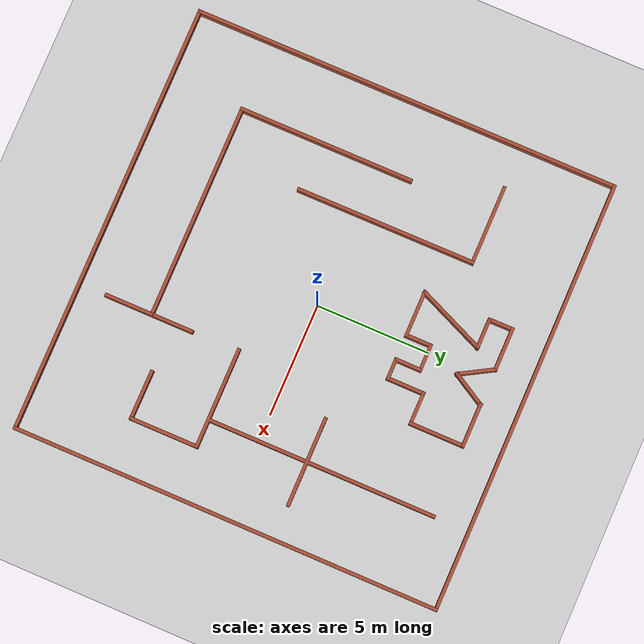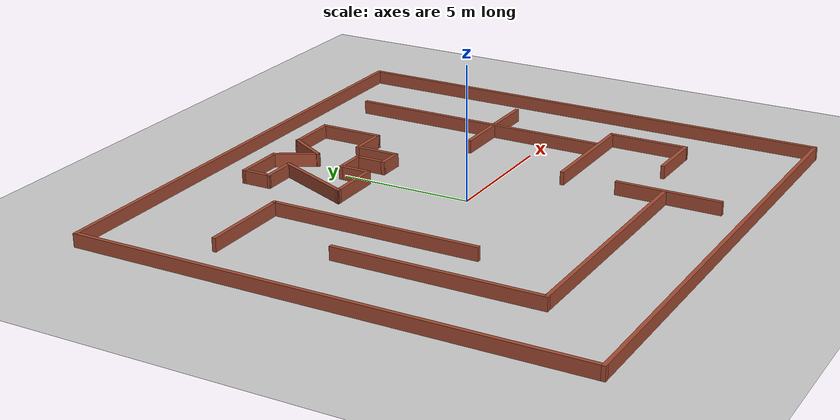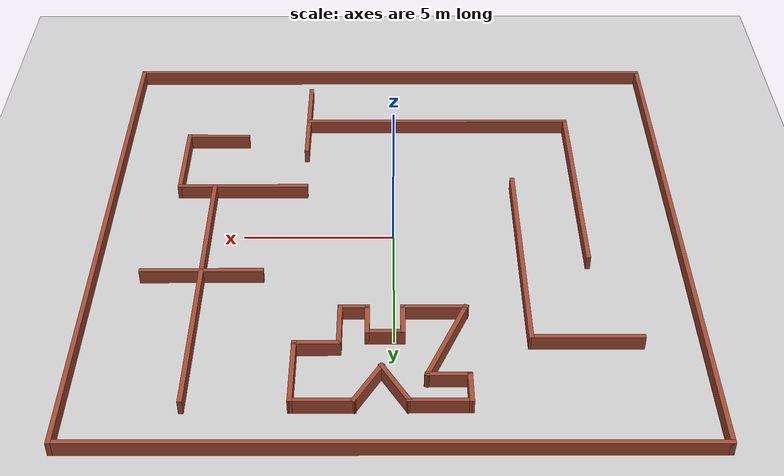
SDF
<sdf version="1.6">
 <world name="default">
  <light name="sun" type="directional">
   <pose>0 0 10 0 -0 0</pose>
   <diffuse>0.8 0.8 0.8 1</diffuse>
   <specular>0.2 0.2 0.2 1</specular>
   <attenuation>
    <range>1000</range>
    <constant>0.9</constant>
    <linear>0.01</linear>
    <quadratic>0.001</quadratic>
   </attenuation>
   <direction>-0.5 0.1 -0.9</direction>
  </light>
  <model name="ground_plane">
   <static>1</static>
   <link name="link">
    <collision name="collision">
     <geometry><plane><normal>0 0 1</normal><size>100 100</size></plane></geometry>
     <surface>
      <contact><collide_bitmask>65535</collide_bitmask></contact>
      <friction><ode><mu>100</mu><mu2>50</mu2></ode></friction>
     </surface>
    </collision>
    <visual name="visual">
     <cast_shadows>0</cast_shadows>
     <geometry><plane><normal>0 0 1</normal><size>100 100</size></plane></geometry>
     <material>
      <script><uri>file://media/materials/scripts/gazebo.material</uri><name>Gazebo/Grey</name></script>
     </material>
    </visual>
   </link>
  </model>
  <gravity>0 0 -9.8</gravity>
  <magnetic_field>6e-06 2.3e-05 -4.2e-05</magnetic_field>
  <atmosphere type="adiabatic"/>
  <physics name="default_physics" default="0" type="ode">
   <max_step_size>0.001</max_step_size>
   <real_time_factor>1</real_time_factor>
   <real_time_update_rate>1000</real_time_update_rate>
  </physics>
  <scene><ambient>0.4 0.4 0.4 1</ambient><background>0.7 0.7 0.7 1</background><shadows>1</shadows></scene>
  <audio><device>default</device></audio>
  <spherical_coordinates>
   <surface_model>EARTH_WGS84</surface_model>
   <latitude_deg>0</latitude_deg>
   <longitude_deg>0</longitude_deg>
   <elevation>0</elevation>
   <heading_deg>0</heading_deg>
  </spherical_coordinates>
  <model name="zmp_wall">
   <pose>0.101 -0.014 0 0 -0 0</pose>
   <link name="Wall_10">
    <collision name="Wall_10_Collision">
     <geometry><box><size>19.25 0.15 0.5</size></box></geometry>
     <pose>0 0 0.25 0 -0 0</pose>
    </collision>
    <visual name="Wall_10_Visual">
     <pose>0 0 0.25 0 -0 0</pose>
     <geometry><box><size>19.25 0.15 0.5</size></box></geometry>
     <material>
      <script><uri>file://media/materials/scripts/gazebo.material</uri><name>Gazebo/Bricks</name></script>
      <ambient>0.996078 0.47451 0.0196078 1</ambient>
     </material>
     <meta><layer>0</layer></meta>
    </visual>
    <pose>0 -9.445 0 0 -0 3.14159</pose>
   </link>
   <link name="Wall_13">
    <collision name="Wall_13_Collision">
     <geometry><box><size>19.0403 0.15 0.5</size></box></geometry>
     <pose>0 0 0.25 0 -0 0</pose>
    </collision>
    <visual name="Wall_13_Visual">
     <pose>0 0 0.25 0 -0 0</pose>
     <geometry><box><size>19.0403 0.15 0.5</size></box></geometry>
     <material>
      <script><uri>file://media/materials/scripts/gazebo.material</uri><name>Gazebo/Bricks</name></script>
      <ambient>0.996078 0.47451 0.0196078 1</ambient>
     </material>
     <meta><layer>0</layer></meta>
    </visual>
    <pose>9.55 -0 0 0 -0 -1.5708</pose>
   </link>
   <link name="Wall_59">
    <collision name="Wall_59_Collision">
     <geometry><box><size>1.968 0.15 0.5</size></box></geometry>
     <pose>0 0 0.25 0 -0 0</pose>
    </collision>
    <visual name="Wall_59_Visual">
     <pose>0 0 0.25 0 -0 0</pose>
     <geometry><box><size>1.968 0.15 0.5</size></box></geometry>
     <material>
      <script><uri>file://media/materials/scripts/gazebo.material</uri><name>Gazebo/Bricks</name></script>
      <ambient>1 1 1 1</ambient>
     </material>
     <meta><layer>0</layer></meta>
    </visual>
    <pose>-1.439 7.852 0 0 -0 0</pose>
   </link>
   <link name="Wall_60">
    <collision name="Wall_60_Collision">
     <geometry><box><size>1.75 0.15 0.5</size></box></geometry>
     <pose>0 0 0.25 0 -0 0</pose>
    </collision>
    <visual name="Wall_60_Visual">
     <pose>0 0 0.25 0 -0 0</pose>
     <geometry><box><size>1.75 0.15 0.5</size></box></geometry>
     <material>
      <script><uri>file://media/materials/scripts/gazebo.material</uri><name>Gazebo/Bricks</name></script>
      <ambient>1 1 1 1</ambient>
     </material>
     <meta><layer>0</layer></meta>
    </visual>
    <pose>-0.13 7.159 0 0 -0 -1.04731</pose>
   </link>
   <link name="Wall_61">
    <collision name="Wall_61_Collision">
     <geometry><box><size>1.75 0.15 0.5</size></box></geometry>
     <pose>0 0 0.25 0 -0 0</pose>
    </collision>
    <visual name="Wall_61_Visual">
     <pose>0 0 0.25 0 -0 0</pose>
     <geometry><box><size>1.75 0.15 0.5</size></box></geometry>
     <material>
      <script><uri>file://media/materials/scripts/gazebo.material</uri><name>Gazebo/Bricks</name></script>
      <ambient>1 1 1 1</ambient>
     </material>
     <meta><layer>0</layer></meta>
    </visual>
    <pose>0.67 7.159 0 0 -0 1.04731</pose>
   </link>
   <link name="Wall_62">
    <collision name="Wall_62_Collision">
     <geometry><box><size>2 0.15 0.5</size></box></geometry>
     <pose>0 0 0.25 0 -0 0</pose>
    </collision>
    <visual name="Wall_62_Visual">
     <pose>0 0 0.25 0 -0 0</pose>
     <geometry><box><size>2 0.15 0.5</size></box></geometry>
     <material>
      <script><uri>file://media/materials/scripts/gazebo.material</uri><name>Gazebo/Bricks</name></script>
      <ambient>1 1 1 1</ambient>
     </material>
     <meta><layer>0</layer></meta>
    </visual>
    <pose>1.995 7.852 0 0 -0 0</pose>
   </link>
   <link name="Wall_63">
    <collision name="Wall_63_Collision">
     <geometry><box><size>2.5 0.15 0.5</size></box></geometry>
     <pose>0 0 0.25 0 -0 0</pose>
    </collision>
    <visual name="Wall_63_Visual">
     <pose>0 0 0.25 0 -0 0</pose>
     <geometry><box><size>2.5 0.15 0.5</size></box></geometry>
     <material>
      <script><uri>file://media/materials/scripts/gazebo.material</uri><name>Gazebo/Bricks</name></script>
      <ambient>1 1 1 1</ambient>
     </material>
     <meta><layer>0</layer></meta>
    </visual>
    <pose>2.92 6.677 0 0 -0 -1.5708</pose>
   </link>
   <link name="Wall_64">
    <collision name="Wall_64_Collision">
     <geometry><box><size>1.5 0.15 0.5</size></box></geometry>
     <pose>0 0 0.25 0 -0 0</pose>
    </collision>
    <visual name="Wall_64_Visual">
     <pose>0 0 0.25 0 -0 0</pose>
     <geometry><box><size>1.5 0.15 0.5</size></box></geometry>
     <material>
      <script><uri>file://media/materials/scripts/gazebo.material</uri><name>Gazebo/Bricks</name></script>
      <ambient>1 1 1 1</ambient>
     </material>
     <meta><layer>0</layer></meta>
    </visual>
    <pose>2.245 5.502 0 0 -0 3.14159</pose>
   </link>
   <link name="Wall_65">
    <collision name="Wall_65_Collision">
     <geometry><box><size>1.75 0.15 0.5</size></box></geometry>
     <pose>0 0 0.25 0 -0 0</pose>
    </collision>
    <visual name="Wall_65_Visual">
     <pose>0 0 0.25 0 -0 0</pose>
     <geometry><box><size>1.75 0.15 0.5</size></box></geometry>
     <material>
      <script><uri>file://media/materials/scripts/gazebo.material</uri><name>Gazebo/Bricks</name></script>
      <ambient>1 1 1 1</ambient>
     </material>
     <meta><layer>0</layer></meta>
    </visual>
    <pose>1.57 4.702 0 0 -0 -1.5708</pose>
   </link>
   <link name="Wall_66">
    <collision name="Wall_66_Collision">
     <geometry><box><size>1 0.15 0.5</size></box></geometry>
     <pose>0 0 0.25 0 -0 0</pose>
    </collision>
    <visual name="Wall_66_Visual">
     <pose>0 0 0.25 0 -0 0</pose>
     <geometry><box><size>1 0.15 0.5</size></box></geometry>
     <material>
      <script><uri>file://media/materials/scripts/gazebo.material</uri><name>Gazebo/Bricks</name></script>
      <ambient>1 1 1 1</ambient>
     </material>
     <meta><layer>0</layer></meta>
    </visual>
    <pose>1.145 3.902 0 0 -0 3.14159</pose>
   </link>
   <link name="Wall_67">
    <collision name="Wall_67_Collision">
     <geometry><box><size>1.25 0.15 0.5</size></box></geometry>
     <pose>0 0 0.25 0 -0 0</pose>
    </collision>
    <visual name="Wall_67_Visual">
     <pose>0 0 0.25 0 -0 0</pose>
     <geometry><box><size>1.25 0.15 0.5</size></box></geometry>
     <material>
      <script><uri>file://media/materials/scripts/gazebo.material</uri><name>Gazebo/Bricks</name></script>
      <ambient>1 1 1 1</ambient>
     </material>
     <meta><layer>0</layer></meta>
    </visual>
    <pose>0.72 4.452 0 0 -0 1.5708</pose>
   </link>
   <link name="Wall_68">
    <collision name="Wall_68_Collision">
     <geometry><box><size>1.25 0.15 0.5</size></box></geometry>
     <pose>0 0 0.25 0 -0 0</pose>
    </collision>
    <visual name="Wall_68_Visual">
     <pose>0 0 0.25 0 -0 0</pose>
     <geometry><box><size>1.25 0.15 0.5</size></box></geometry>
     <material>
      <script><uri>file://media/materials/scripts/gazebo.material</uri><name>Gazebo/Bricks</name></script>
      <ambient>1 1 1 1</ambient>
     </material>
     <meta><layer>0</layer></meta>
    </visual>
    <pose>0.17 5.002 0 0 -0 3.14159</pose>
   </link>
   <link name="Wall_69">
    <collision name="Wall_69_Collision">
     <geometry><box><size>1.25 0.15 0.5</size></box></geometry>
     <pose>0 0 0.25 0 -0 0</pose>
    </collision>
    <visual name="Wall_69_Visual">
     <pose>0 0 0.25 0 -0 0</pose>
     <geometry><box><size>1.25 0.15 0.5</size></box></geometry>
     <material>
      <script><uri>file://media/materials/scripts/gazebo.material</uri><name>Gazebo/Bricks</name></script>
      <ambient>1 1 1 1</ambient>
     </material>
     <meta><layer>0</layer></meta>
    </visual>
    <pose>-0.38 4.452 0 0 -0 -1.5708</pose>
   </link>
   <link name="Wall_7">
    <collision name="Wall_7_Collision">
     <geometry><box><size>19.04 0.15 0.5</size></box></geometry>
     <pose>0 0 0.25 0 -0 0</pose>
    </collision>
    <visual name="Wall_7_Visual">
     <pose>0 0 0.25 0 -0 0</pose>
     <geometry><box><size>19.04 0.15 0.5</size></box></geometry>
     <material>
      <script><uri>file://media/materials/scripts/gazebo.material</uri><name>Gazebo/Bricks</name></script>
      <ambient>0.996078 0.47451 0.0196078 1</ambient>
     </material>
     <meta><layer>0</layer></meta>
    </visual>
    <pose>-9.55 -0 0 0 -0 1.5708</pose>
   </link>
   <link name="Wall_70">
    <collision name="Wall_70_Collision">
     <geometry><box><size>2.10678 0.15 0.5</size></box></geometry>
     <pose>0 0 0.25 0 -0 0</pose>
    </collision>
    <visual name="Wall_70_Visual">
     <pose>0 0 0.25 0 -0 0</pose>
     <geometry><box><size>2.10678 0.15 0.5</size></box></geometry>
     <material>
      <script><uri>file://media/materials/scripts/gazebo.material</uri><name>Gazebo/Bricks</name></script>
      <ambient>1 1 1 1</ambient>
     </material>
     <meta><layer>0</layer></meta>
    </visual>
    <pose>-1.3585 3.902 0 0 -0 3.14159</pose>
   </link>
   <link name="Wall_71">
    <collision name="Wall_71_Collision">
     <geometry><box><size>3.32377 0.15 0.5</size></box></geometry>
     <pose>0 0 0.25 0 -0 0</pose>
    </collision>
    <visual name="Wall_71_Visual">
     <pose>0 0 0.25 0 -0 0</pose>
     <geometry><box><size>3.32377 0.15 0.5</size></box></geometry>
     <material>
      <script><uri>file://media/materials/scripts/gazebo.material</uri><name>Gazebo/Bricks</name></script>
      <ambient>1 1 1 1</ambient>
     </material>
     <meta><layer>0</layer></meta>
    </visual>
    <pose>-1.71 5.36 0 0 -0 1.16466</pose>
   </link>
   <link name="Wall_72">
    <collision name="Wall_72_Collision">
     <geometry><box><size>1.40749 0.15 0.5</size></box></geometry>
     <pose>0 0 0.25 0 -0 0</pose>
    </collision>
    <visual name="Wall_72_Visual">
     <pose>0 0 0.25 0 -0 0</pose>
     <geometry><box><size>1.40749 0.15 0.5</size></box></geometry>
     <material>
      <script><uri>file://media/materials/scripts/gazebo.material</uri><name>Gazebo/Bricks</name></script>
      <ambient>1 1 1 1</ambient>
     </material>
     <meta><layer>0</layer></meta>
    </visual>
    <pose>-1.7115 6.818 0 0 -0 3.14159</pose>
   </link>
   <link name="Wall_73">
    <collision name="Wall_73_Collision">
     <geometry><box><size>1.18404 0.15 0.5</size></box></geometry>
     <pose>0 0 0.25 0 -0 0</pose>
    </collision>
    <visual name="Wall_73_Visual">
     <pose>0 0 0.25 0 -0 0</pose>
     <geometry><box><size>1.18404 0.15 0.5</size></box></geometry>
     <material>
      <script><uri>file://media/materials/scripts/gazebo.material</uri><name>Gazebo/Bricks</name></script>
      <ambient>1 1 1 1</ambient>
     </material>
     <meta><layer>0</layer></meta>
    </visual>
    <pose>-2.344 7.335 0 0 -0 1.57853</pose>
   </link>
   <link name="Wall_78">
    <collision name="Wall_78_Collision">
     <geometry><box><size>10.25 0.15 0.5</size></box></geometry>
     <pose>0 0 0.25 0 -0 0</pose>
    </collision>
    <visual name="Wall_78_Visual">
     <pose>0 0 0.25 0 -0 0</pose>
     <geometry><box><size>10.25 0.15 0.5</size></box></geometry>
     <material>
      <script><uri>file://media/materials/scripts/gazebo.material</uri><name>Gazebo/Bricks</name></script>
      <ambient>1 1 1 1</ambient>
     </material>
     <meta><layer>0</layer></meta>
    </visual>
    <pose>6.073 2.822 0 0 -0 -1.5708</pose>
   </link>
   <link name="Wall_8">
    <collision name="Wall_8_Collision">
     <geometry><box><size>19.2495 0.15 0.5</size></box></geometry>
     <pose>0 0 0.25 0 -0 0</pose>
    </collision>
    <visual name="Wall_8_Visual">
     <pose>0 0 0.25 0 -0 0</pose>
     <geometry><box><size>19.2495 0.15 0.5</size></box></geometry>
     <material>
      <script><uri>file://media/materials/scripts/gazebo.material</uri><name>Gazebo/Bricks</name></script>
      <ambient>0.996078 0.47451 0.0196078 1</ambient>
     </material>
     <meta><layer>0</layer></meta>
    </visual>
    <pose>0 9.445 0 0 -0 0</pose>
   </link>
   <link name="Wall_80">
    <collision name="Wall_80_Collision">
     <geometry><box><size>7.82066 0.15 0.5</size></box></geometry>
     <pose>0 0 0.25 0 -0 0</pose>
    </collision>
    <visual name="Wall_80_Visual">
     <pose>0 0 0.25 0 -0 0</pose>
     <geometry><box><size>7.82066 0.15 0.5</size></box></geometry>
     <material>
      <script><uri>file://media/materials/scripts/gazebo.material</uri><name>Gazebo/Bricks</name></script>
      <ambient>1 1 1 1</ambient>
     </material>
     <meta><layer>0</layer></meta>
    </visual>
    <pose>-6.428 -2.315 0 0 -0 -1.5708</pose>
   </link>
   <link name="Wall_81">
    <collision name="Wall_81_Collision">
     <geometry><box><size>9.53057 0.15 0.5</size></box></geometry>
     <pose>0 0 0.25 0 -0 0</pose>
    </collision>
    <visual name="Wall_81_Visual">
     <pose>0 0 0.25 0 -0 0</pose>
     <geometry><box><size>9.53057 0.15 0.5</size></box></geometry>
     <material>
      <script><uri>file://media/materials/scripts/gazebo.material</uri><name>Gazebo/Bricks</name></script>
      <ambient>1 1 1 1</ambient>
     </material>
     <meta><layer>0</layer></meta>
    </visual>
    <pose>-1.7375 -6.15 0 0 -0 0</pose>
   </link>
   <link name="Wall_83">
    <collision name="Wall_83_Collision">
     <geometry><box><size>3.5478 0.15 0.5</size></box></geometry>
     <pose>0 0 0.25 0 -0 0</pose>
    </collision>
    <visual name="Wall_83_Visual">
     <pose>0 0 0.25 0 -0 0</pose>
     <geometry><box><size>3.5478 0.15 0.5</size></box></geometry>
     <material>
      <script><uri>file://media/materials/scripts/gazebo.material</uri><name>Gazebo/Bricks</name></script>
      <ambient>1 1 1 1</ambient>
     </material>
     <meta><layer>0</layer></meta>
    </visual>
    <pose>-5.969 5.242 0 0 -0 0</pose>
   </link>
   <link name="Wall_84">
    <collision name="Wall_84_Collision">
     <geometry><box><size>8 0.15 0.5</size></box></geometry>
     <pose>0 0 0.25 0 -0 0</pose>
    </collision>
    <visual name="Wall_84_Visual">
     <pose>0 0 0.25 0 -0 0</pose>
     <geometry><box><size>8 0.15 0.5</size></box></geometry>
     <material>
      <script><uri>file://media/materials/scripts/gazebo.material</uri><name>Gazebo/Bricks</name></script>
      <ambient>1 1 1 1</ambient>
     </material>
     <meta><layer>0</layer></meta>
    </visual>
    <pose>-4.2565 1.317 0 0 -0 -1.56736</pose>
   </link>
   <link name="Wall_86">
    <collision name="Wall_86_Collision">
     <geometry><box><size>4.5 0.15 0.5</size></box></geometry>
     <pose>0 0 0.25 0 -0 0</pose>
    </collision>
    <visual name="Wall_86_Visual">
     <pose>0 0 0.25 0 -0 0</pose>
     <geometry><box><size>4.5 0.15 0.5</size></box></geometry>
     <material>
      <script><uri>file://media/materials/scripts/gazebo.material</uri><name>Gazebo/Bricks</name></script>
      <ambient>1 1 1 1</ambient>
     </material>
     <meta><layer>0</layer></meta>
    </visual>
    <pose>5.112 -2.242 0 0 -0 0</pose>
   </link>
   <link name="Wall_87">
    <collision name="Wall_87_Collision">
     <geometry><box><size>3.11117 0.15 0.5</size></box></geometry>
     <pose>0 0 0.25 0 -0 0</pose>
    </collision>
    <visual name="Wall_87_Visual">
     <pose>0 0 0.25 0 -0 0</pose>
     <geometry><box><size>3.11117 0.15 0.5</size></box></geometry>
     <material>
      <script><uri>file://media/materials/scripts/gazebo.material</uri><name>Gazebo/Bricks</name></script>
      <ambient>1 1 1 1</ambient>
     </material>
     <meta><layer>0</layer></meta>
    </visual>
    <pose>7.2895 -3.7225 0 0 -0 -1.56911</pose>
   </link>
   <link name="Wall_88">
    <collision name="Wall_88_Collision">
     <geometry><box><size>2.25 0.15 0.5</size></box></geometry>
     <pose>0 0 0.25 0 -0 0</pose>
    </collision>
    <visual name="Wall_88_Visual">
     <pose>0 0 0.25 0 -0 0</pose>
     <geometry><box><size>2.25 0.15 0.5</size></box></geometry>
     <material>
      <script><uri>file://media/materials/scripts/gazebo.material</uri><name>Gazebo/Bricks</name></script>
      <ambient>1 1 1 1</ambient>
     </material>
     <meta><layer>0</layer></meta>
    </visual>
    <pose>6.242 -5.1955 0 0 -0 3.13445</pose>
   </link>
   <link name="Wall_90">
    <collision name="Wall_90_Collision">
     <geometry><box><size>4 0.15 0.5</size></box></geometry>
     <pose>0 0 0.25 0 -0 0</pose>
    </collision>
    <visual name="Wall_90_Visual">
     <pose>0 0 0.25 0 -0 0</pose>
     <geometry><box><size>4 0.15 0.5</size></box></geometry>
     <material>
      <script><uri>file://media/materials/scripts/gazebo.material</uri><name>Gazebo/Bricks</name></script>
      <ambient>1 1 1 1</ambient>
     </material>
     <meta><layer>0</layer></meta>
    </visual>
    <pose>2.993 -6.271 0 0 -0 -1.5708</pose>
   </link>
   <link name="Wall_92">
    <collision name="Wall_92_Collision">
     <geometry><box><size>4 0.15 0.5</size></box></geometry>
     <pose>0 0 0.25 0 -0 0</pose>
    </collision>
    <visual name="Wall_92_Visual">
     <pose>0 0 0.25 0 -0 0</pose>
     <geometry><box><size>4 0.15 0.5</size></box></geometry>
     <material>
      <script><uri>file://media/materials/scripts/gazebo.material</uri><name>Gazebo/Bricks</name></script>
      <ambient>1 1 1 1</ambient>
     </material>
     <meta><layer>0</layer></meta>
    </visual>
    <pose>6.072 2.186 0 0 -0 0</pose>
   </link>
   <static>1</static>
  </model>
 </world>
</sdf>
